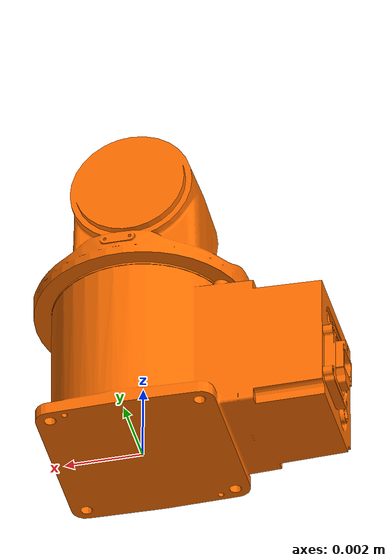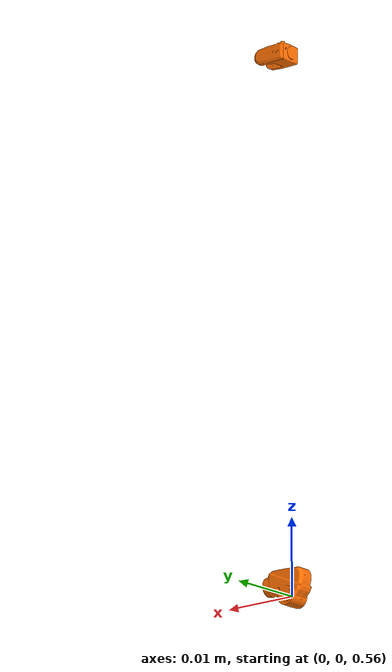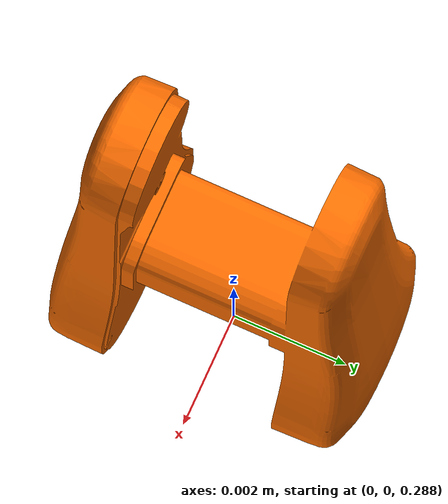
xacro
<?xml version="1.0" ?>

<robot name="abb_irb120" xmlns:xacro="http://ros.org/wiki/xacro">
  <xacro:include filename="irb120_macro.xacro"/>
  <xacro:abb_irb120 prefix=""/>
  <xacro:property name="pi" value="3.141592653589793"/>
  <!-- Friction values: joint 1 -->
  <xacro:property name="fcmin1" value="5.626137"/>
  <xacro:property name="fcmax1" value="27.5759"/>
  <xacro:property name="fvmin1" value="1.420235564"/>
  <xacro:property name="fvmax1" value="4.456808246"/>
  <!-- Friction values: joint 2 -->
  <xacro:property name="fcmin2" value="6.05"/>
  <xacro:property name="fcmax2" value="27.5759"/>
  <xacro:property name="fvmin2" value="2.9282"/>
  <xacro:property name="fvmax2" value="4.456808246"/>
  <!-- Friction values: joint 3 -->
  <xacro:property name="fcmin3" value="3.93092"/>
  <xacro:property name="fcmax3" value="20.77873"/>
  <xacro:property name="fvmin3" value="0.77517399"/>
  <xacro:property name="fvmax3" value="2.258154566"/>
  <!-- Friction values: joint 4 -->
  <xacro:property name="fcmin4" value="0.35"/>
  <xacro:property name="fcmax4" value="0.25965"/>
  <xacro:property name="fvmin4" value="0.25965"/>
  <xacro:property name="fvmax4" value="0.6224375"/>
  <!-- Friction values: joint 5 -->
  <xacro:property name="fcmin5" value="0.357"/>
  <xacro:property name="fcmax5" value="4.46556"/>
  <xacro:property name="fvmin5" value="0.27013986"/>
  <xacro:property name="fvmax5" value="0.647583975"/>
  <!-- Friction values: joint 6 -->
  <xacro:property name="fcmin6" value="0.54005"/>
  <xacro:property name="fcmax6" value="2.13965"/>
  <xacro:property name="fvmin6" value="0.10369"/>
  <xacro:property name="fvmax6" value="0.38679"/>
</robot>

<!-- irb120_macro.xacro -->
<robot xmlns:xacro="http://ros.org/wiki/xacro">
<xacro:macro name="abb_irb120" params="prefix">
  <!-- link list -->
  <link name="${prefix}base_link">
    <visual>
      <origin xyz="0 0 0" rpy="0 0 0"/>
      <geometry>
        <mesh filename="meshes/irb120/visual/base_link.stl" scale="0.0254 0.0254 0.0254"/>
      </geometry>
      <material name="abb_orange">
        <color rgba="1 0.43 0 1"/>
      </material>
    </visual>
    <collision>
      <origin xyz="0 0 0" rpy="0 0 0"/>
      <geometry>
        <mesh filename="meshes/irb120/collision/base_link.stl" scale="0.0254 0.0254 0.0254"/>
      </geometry>
      <material name="cyan">
        <color rgba="0 1 1 1"/>
      </material>
    </collision>
  </link>
  <link name="${prefix}link_1">
    <visual>
      <origin xyz="0 0 -0.163" rpy="0 0 0"/>
      <geometry>
        <mesh filename="meshes/irb120/visual/link_1.stl" scale="0.0254 0.0254 0.0254"/>
      </geometry>
      <material name="abb_orange"/>
    </visual>
    <collision>
      <origin xyz="0 0 -0.163" rpy="0 0 0"/>
      <geometry>
        <mesh filename="meshes/irb120/collision/link_1.stl" scale="0.0254 0.0254 0.0254"/>
      </geometry>
      <material name="cyan"/>
    </collision>
    <inertial>
      <mass value="6.004000e+00"/>
      <inertia ixx="3.193406e-02" ixy="1.445000e-05" ixz="-3.272200e-04" iyy="2.637650e-02" iyz="-3.322410e-03" izz="2.386651e-02"/>
      <origin rpy="0 0 0" xyz="6.400000e-04 -1.898000e-02 9.504000e-02"/>
    </inertial>
  </link>
  <link name="${prefix}link_2">
    <visual>
      <origin xyz="0 0 0" rpy="0 0 0"/>
      <geometry>
        <mesh filename="meshes/irb120/visual/link_2.stl" scale="0.0254 0.0254 0.0254"/>
      </geometry>
      <material name="abb_orange"/>
    </visual>
    <collision>
      <origin xyz="0 0 0" rpy="0 0 0"/>
      <geometry>
        <mesh filename="meshes/irb120/collision/link_2.stl" scale="0.0254 0.0254 0.0254"/>
      </geometry>
      <material name="cyan"/>
    </collision>
    <inertial>
      <mass value="4.187000e+00"/>
      <inertia ixx="4.819772e-02" ixy="9.786000e-05" ixz="8.335000e-04" iyy="4.032172e-02" iyz="8.157000e-04" izz="1.476244e-02"/>
      <origin rpy="0 0 0" xyz="4.270000e-03 -2.943000e-02 1.420400e-01"/>
    </inertial>
  </link>
  <link name="${prefix}link_3">
    <visual>
      <origin xyz="0 0 0" rpy="0 0 0"/>
      <geometry>
        <mesh filename="meshes/irb120/visual/link_3.stl" scale="0.0254 0.0254 0.0254"/>
      </geometry>
      <material name="abb_orange"/>
    </visual>
    <collision>
      <origin xyz="0 0 0" rpy="0 0 0"/>
      <geometry>
        <mesh filename="meshes/irb120/collision/link_3.stl" scale="0.0254 0.0254 0.0254"/>
      </geometry>
      <material name="cyan"/>
    </collision>
    <inertial>
      <mass value="3.173000e+00"/>
      <inertia ixx="6.184840e-03" ixy="-1.183800e-04" ixz="1.878090e-03" iyy="1.540900e-02" iyz="5.370000e-06" izz="1.311689e-02"/>
      <origin rpy="0 0 0" xyz="4.156000e-02 4.900000e-04 5.320000e-02"/>
    </inertial>
  </link>
  <link name="${prefix}link_4">
    <visual>
      <origin xyz="-0.142 0 0" rpy="0 0 0"/>
      <geometry>
        <mesh filename="meshes/irb120/visual/link_4.stl" scale="0.0254 0.0254 0.0254"/>
      </geometry>
      <material name="abb_orange"/>
    </visual>
    <collision>
      <origin xyz="-0.142 0 0" rpy="0 0 0"/>
      <geometry>
        <mesh filename="meshes/irb120/collision/link_4.stl" scale="0.0254 0.0254 0.0254"/>
      </geometry>
      <material name="cyan"/>
    </collision>
    <inertial>
      <mass value="1.834000e+00"/>
      <inertia ixx="2.705740e-03" ixy="1.267490e-03" ixz="2.493700e-04" iyy="6.155200e-03" iyz="1.437600e-04" izz="7.059200e-03"/>
      <origin rpy="0 0 0" xyz="8.137000e-02 1.683000e-02 -4.330000e-03"/>
    </inertial>
  </link>
  <link name="${prefix}link_5">
    <visual>
      <origin xyz="0 0 0" rpy="0 0 0"/>
      <geometry>
        <mesh filename="meshes/irb120/visual/link_5.stl" scale="0.0254 0.0254 0.0254"/>
      </geometry>
      <material name="abb_orange"/>
    </visual>
    <collision>
      <origin xyz="0 0 0" rpy="0 0 0"/>
      <geometry>
        <mesh filename="meshes/irb120/collision/link_5.stl" scale="0.0254 0.0254 0.0254"/>
      </geometry>
      <material name="cyan"/>
    </collision>
    <inertial>
      <mass value="1.271000e+00"/>
      <inertia ixx="7.580000e-04" ixy="-2.620000e-05" ixz="-3.370000e-05" iyy="2.034000e-03" iyz="6.300000e-06" izz="1.921000e-03"/>
      <origin rpy="0 0 0" xyz="1.155000e-02 1.370000e-03 1.010000e-03"/>
    </inertial>
  </link>
  <link name="${prefix}link_6">
    <visual>
      <origin xyz="0 0 0" rpy="0 0 0"/>
      <geometry>
        <mesh filename="meshes/irb120/visual/link_6.stl" scale="0.0254 0.0254 0.0254"/>
      </geometry>
      <material name="black">
        <color rgba="0 0 0 1"/>
      </material>
    </visual>
    <collision>
      <origin xyz="0 0 0" rpy="0 0 0"/>
      <geometry>
        <mesh filename="meshes/irb120/collision/link_6.stl" />
      </geometry>
      <material name="cyan"/>
    </collision>
    <inertial>
      <mass value="2.260000e-01"/>
      <inertia ixx="6.800000e-05" ixy="-1.000000e-07" ixz="0.000000e+00" iyy="4.100000e-05" iyz="0.000000e+00" izz="4.100000e-05"/>
      <origin rpy="0 0 0" xyz="-1.141100e-02 -8.000000e-05 -1.000000e-06"/>
    </inertial>
  </link>
  <link name="${prefix}tool0"/>
  <!-- end of link list -->

  <!-- joint list -->
  <joint name="${prefix}joint_1" type="revolute">
    <origin rpy="0 0 0" xyz="0 0 0.163"/>
    <parent link="${prefix}base_link"/>
    <child link="${prefix}link_1"/>
    <limit effort="76.6056808" lower="${-11*pi/12}" upper="${11*pi/12}" velocity="4.36332"/>
    <axis xyz="0 0 1"/>
    <dynamics damping="${(fvmin1+fvmax1)/2}" friction="${(fcmin1+fcmax1)/2}"/>
  </joint>
  <joint name="${prefix}joint_2" type="revolute">
    <origin rpy="0 0 0" xyz="0 0 0.127"/>
    <parent link="${prefix}link_1"/>
    <child link="${prefix}link_2"/>
    <limit effort="66.795993" lower="${-11*pi/18}" upper="${11*pi/18}" velocity="4.36332"/>
    <axis xyz="0 1 0"/>
    <dynamics damping="${(fvmin2+fvmax2)/2}" friction="${(fcmin2+fcmax2)/2}"/>
  </joint>
  <joint name="${prefix}joint_3" type="revolute">
    <origin rpy="0 0 0" xyz="0 0 0.27"/>
    <parent link="${prefix}link_2"/>
    <child link="${prefix}link_3"/>
    <limit effort="32.824192" lower="${-11*pi/18}" upper="${7*pi/18}" velocity="4.36332"/>
    <axis xyz="0 1 0"/>
    <dynamics damping="${(fvmin3+fvmax3)/2}" friction="${(fcmin3+fcmax3)/2}"/>
  </joint>
  <joint name="${prefix}joint_4" type="revolute">
    <origin rpy="0 0 0" xyz="0.142 0 0.07"/>
    <parent link="${prefix}link_3"/>
    <child link="${prefix}link_4"/>
    <limit effort="7.32805" lower="${-8*pi/9}" upper="${8*pi/9}" velocity="5.58505"/>
    <axis xyz="1 0 0"/>
    <dynamics damping="${(fvmin4+fvmax4)/2}" friction="${(fcmin4+fcmax4)/2}"/>
  </joint>
  <joint name="${prefix}joint_5" type="revolute">
    <origin rpy="0 0 0" xyz="0.16 0 0"/>
    <parent link="${prefix}link_4"/>
    <child link="${prefix}link_5"/>
    <limit effort="6.552888" lower="${-2*pi/3}" upper="${2*pi/3}" velocity="5.58505"/>
    <axis xyz="0 1 0"/>
    <dynamics damping="${(fvmin5+fvmax5)/2}" friction="${(fcmin5+fcmax5)/2}"/>
  </joint>
  <joint name="${prefix}joint_6" type="revolute">
    <origin rpy="0 0 0" xyz="0.072 0 0"/>
    <parent link="${prefix}link_5"/>
    <child link="${prefix}link_6"/>
    <limit effort="10.03295" lower="${-20*pi/9}" upper="${20*pi/9}" velocity="7.33038"/>
    <axis xyz="1 0 0"/>
    <dynamics damping="${(fvmin6+fvmax6)/2}" friction="${(fcmin6+fcmax6)/2}"/>
  </joint>
  <joint name="${prefix}joint6-tool0" type="fixed">
    <parent link="${prefix}link_6"/>
    <child link="${prefix}tool0"/>
    <origin rpy="0 ${pi/2} 0" xyz="0 0 0"/>
  </joint>
  <!-- end of joint list -->

  <!-- ROS base_link to ABB World Coordinates transform -->
  <link name="${prefix}base" />
  <joint name="${prefix}base_link-base" type="fixed">
    <origin xyz="0 0 0" rpy="0 0 0"/>
    <parent link="${prefix}base_link"/>
    <child link="${prefix}base"/>
  </joint>
  </xacro:macro>
</robot>
